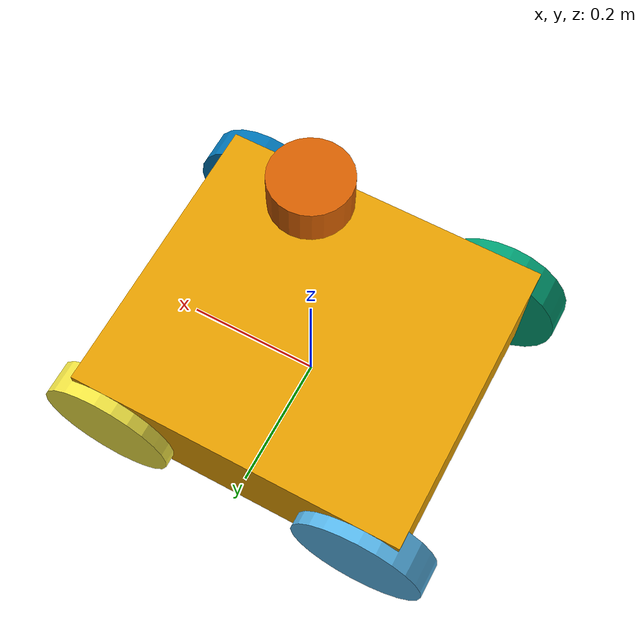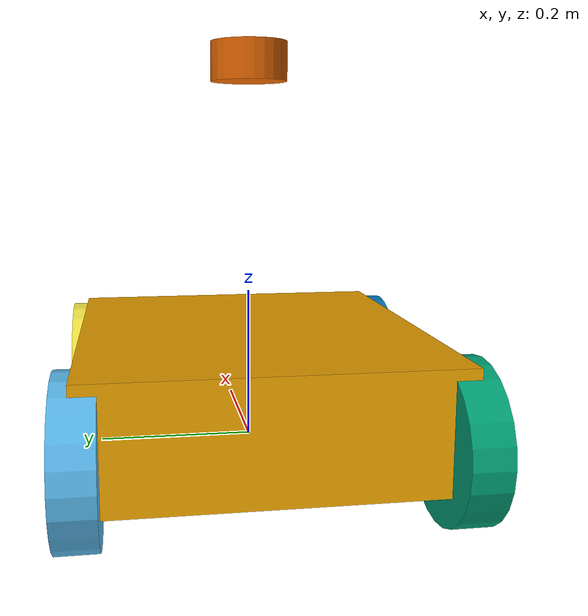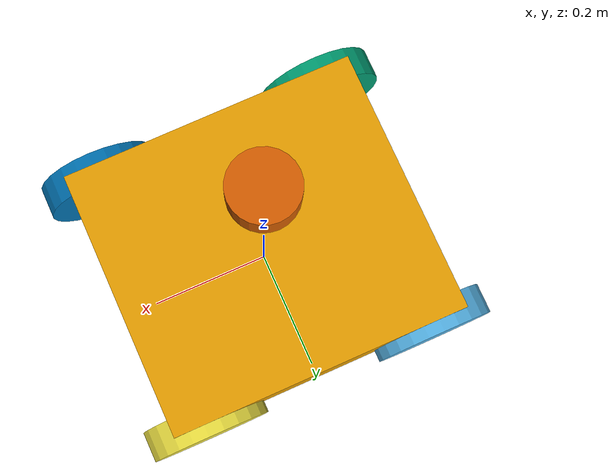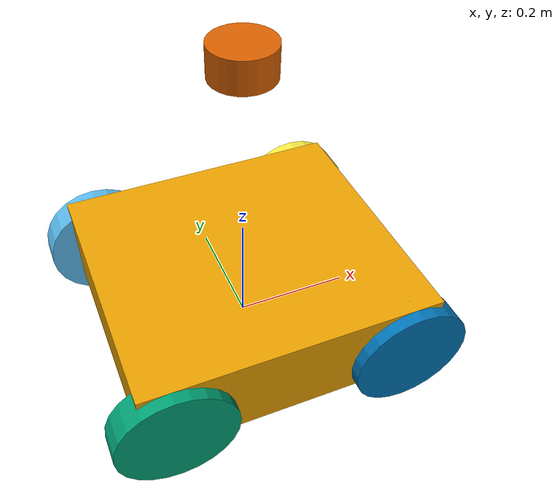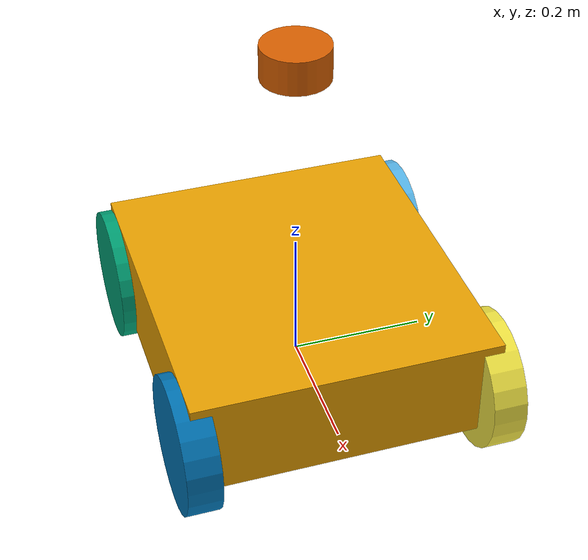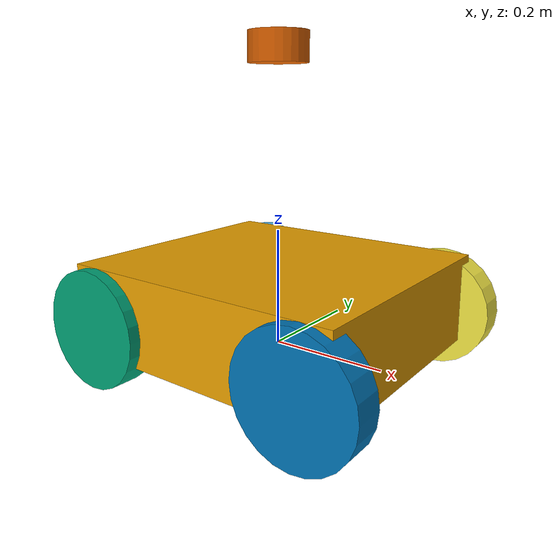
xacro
<?xml version="1.0"?>
<robot name="wheeled_humanoid" xmlns:xacro="http://www.ros.org/wiki/xacro">

  <xacro:include filename="inertial_macros.xacro"/>
  <xacro:include filename="base.xacro"/>
  <xacro:include filename="wheels.xacro"/>
  <xacro:include filename="sensors.xacro"/>

  <gazebo reference="rear_left_wheel">
	  <mu1>0.2</mu1>
	  <mu2>0.2</mu2>
  </gazebo>

  <gazebo reference="rear_right_wheel">
          <mu1>0.2</mu1>
          <mu2>0.2</mu2>
  </gazebo>

  <gazebo reference="front_right_wheel">
          <mu1>0.02</mu1>
          <mu2>0.02</mu2>
  </gazebo>

  <gazebo reference="front_left_wheel">
          <mu1>0.02</mu1>
          <mu2>0.02</mu2>
  </gazebo>

  <gazebo>
        <plugin name="diff_drive" filename="libgazebo_ros_diff_drive.so">
                 <ros>
                        <namespace>/</namespace>
                        <argument>--ros-args --remap __node:=diff_drive_wheeled</argument>
                        <remapping>cmd_vel:=/cmd_vel</remapping>
                        <remapping>odom:=/odom</remapping>
                </ros>

                <!-- Wheel Information -->
                <left_joint>rear_left_wheel_joint</left_joint>
                <right_joint>rear_right_wheel_joint</right_joint>
                <wheel_separation>0.44</wheel_separation>
                <wheel_diameter>0.1</wheel_diameter>

                <!-- Limits -->
                <max_wheel_torque>200</max_wheel_torque>
                <max_wheel_acceleration>200</max_wheel_acceleration>

                <!-- Output -->
                <odometry_frame>odom</odometry_frame>
                <odometry_topic>odom</odometry_topic>
                <robot_base_frame>base_link</robot_base_frame>
                <cmd_vel_topic>cmd_vel</cmd_vel_topic>

                <publish_odom>true</publish_odom>
                <publish_odom_tf>true</publish_odom_tf>
                <publish_wheel_tf>true</publish_wheel_tf>
                <publish_wheel_joint_state>true</publish_wheel_joint_state>
        </plugin>
  </gazebo>
</robot>

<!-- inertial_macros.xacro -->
<robot xmlns:xacro="http://www.ros.org/wiki/xacro">
    <xacro:macro name="box_inertial" params="mass x y z">
        <inertial>
            <mass value="${mass}"/>
            <origin xyz="0 0 0"/>
            <inertia
                ixx="${(1/12) * mass * (y*y + z*z)}"
                iyy="${(1/12) * mass * (x*x + z*z)}"
                izz="${(1/12) * mass * (y*y + x*x)}"
                ixy="0.0" ixz="0.0" iyz="0.0"/>
        </inertial>
    </xacro:macro>

    <xacro:macro name="cylinder_inertial" params="mass r h">
        <inertial>
            <mass value="${mass}"/>
            <origin xyz="0 0 0"/>
            <inertia
                ixx="${(1/12) * mass * (3*r*r  + h*h)}"
                iyy="${(1/12) * mass * (3 * r * r + h * h)}"
                izz="${0.5 * mass * (r * r)}"
                ixy="0.0" ixz="0.0" iyz="0.0"/>
        </inertial>
    </xacro:macro>
</robot>

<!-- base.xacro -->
<robot xmlns:xacro="http://www.ros.org/wiki/xacro">

  <!--link name="base_footprint"/-->

  <link name="base_link">
    <visual>
      <geometry>
        <box size="0.50 0.45 0.15"/>
      </geometry>
      <origin xyz="0 0 0.075"/>
    </visual>

    <collision>
      <geometry>
        <box size="0.50 0.45 0.15"/>
      </geometry>
      <origin xyz="0 0 0.075"/>
    </collision>

    <xacro:box_inertial mass="5" x="0.50" y="0.45" z="0.15"/>
  </link>

</robot>

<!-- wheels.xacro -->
<robot xmlns:xacro="http://www.ros.org/wiki/xacro">

  <!-- ================== WHEELS ================== -->

  <!-- Rear Left Wheel (DRIVEN) -->
  <link name="rear_left_wheel">
    <visual>
      <geometry>
        <cylinder radius="0.10" length="0.05"/>
      </geometry>
      <origin rpy="1.5708 0 0"/>
    </visual>
    <collision>
      <geometry>
        <cylinder radius="0.10" length="0.05"/>
      </geometry>
      <origin rpy="1.5708 0 0"/>
    </collision>

    <xacro:cylinder_inertial mass="2" r="0.10" h="0.05"/>
  </link>

  <joint name="rear_left_wheel_joint" type="continuous">
    <parent link="base_link"/>
    <child link="rear_left_wheel"/>
    <origin xyz="-0.20 0.22 0.05" rpy="0 0 0"/>
    <axis xyz="0 1 0"/>
  </joint>

  <!-- Rear Right Wheel (DRIVEN) -->
  <link name="rear_right_wheel">
    <visual>
      <geometry>
        <cylinder radius="0.10" length="0.05"/>
      </geometry>
      <origin rpy="1.5708 0 0"/>
    </visual>

    <collision>
      <geometry>
        <cylinder radius="0.10" length="0.05"/>
      </geometry>
      <origin rpy="1.5708 0 0"/>
    </collision>

    <xacro:cylinder_inertial mass="2" r="0.10" h="0.05"/>
  </link>

  <joint name="rear_right_wheel_joint" type="continuous">
    <parent link="base_link"/>
    <child link="rear_right_wheel"/>
    <origin xyz="-0.20 -0.22 0.05"  rpy="0 0 0"/>
    <axis xyz="0 1 0"/>
  </joint>

  <!-- Passive Casters -->

  <!-- Front Left Caster -->
  <link name="front_left_wheel">
    <visual>
      <geometry>
        <cylinder radius="0.1" length="0.05"/>
      </geometry>
      <origin rpy="1.5708 0 0"/>
    </visual>
    <collision>
      <geometry>
        <cylinder radius="0.1" length="0.05"/>
      </geometry>
      <origin rpy="1.5708 0 0"/>
    </collision>

    <xacro:cylinder_inertial mass="2" r="0.1" h="0.05"/>
  </link>

  <joint name="front_left_wheel_joint" type="fixed">
    <parent link="base_link"/>
    <child link="front_left_wheel"/>
    <origin xyz="0.20 0.22 0.05" rpy="0 0 0"/>
    <axis xyz="0 1 0"/>
  </joint>

  <!-- Front Right Caster -->
  <link name="front_right_wheel">
    <visual>
      <geometry>
        <cylinder radius="0.1" length="0.05"/>
      </geometry>
      <origin rpy="1.5708 0 0"/>
    </visual>
    <collision>
      <geometry>
        <cylinder radius="0.1" length="0.05"/>
      </geometry>
      <origin rpy="1.5708 0 0"/>
    </collision>

    <xacro:cylinder_inertial mass="2" r="0.1" h="0.05"/>
  </link>

  <joint name="front_right_wheel_joint" type="fixed">
    <parent link="base_link"/>
    <child link="front_right_wheel"/>
    <origin xyz="0.20 -0.22 0.05" rpy="0 0 0"/>
    <axis xyz="0 1 0"/>
  </joint>
</robot>

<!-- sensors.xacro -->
<robot xmlns:xacro="http://www.ros.org/wiki/xacro">

  <link name="lidar_link">
    <visual>
      <geometry>
        <cylinder radius="0.05" length="0.05"/>
      </geometry>
      <origin xyz="0 0 0"/>
    </visual>

    <collision>
      <geometry>
        <cylinder radius="0.05" length="0.05"/>
      </geometry>
      <origin xyz="0 0 0"/>
    </collision>

    <xacro:cylinder_inertial mass="0.1" r="0.05" h="0.05"/>
  </link>

  <joint name="lidar_joint" type="fixed">
    <parent link="base_link"/>
    <child link="lidar_link"/>
    <origin xyz="0 0 0.5" rpy="0 0 0"/>
  </joint>

  <gazebo reference="lidar_link">
    <sensor name="lidar_sensor" type="ray">
      <update_rate>10</update_rate>
      <visualize>true</visualize>
      <ray>
        <scan>
          <horizontal>
            <samples>360</samples>
            <min_angle>-3.14</min_angle>
            <max_angle>3.14</max_angle>
          </horizontal>
        </scan>
        <range>
          <min>0.12</min>
          <max>10.0</max>
        </range>
      </ray>
      <plugin name="lidar_plugin" filename="libgazebo_ros_ray_sensor.so">
        <ros>
          <namespace>/</namespace>
          <remapping>~/out:=scan</remapping>
        </ros>
        <frame_name>lidar_link</frame_name>
        <output_type>sensor_msgs/LaserScan</output_type>
      </plugin>
    </sensor>
  </gazebo>

</robot>
